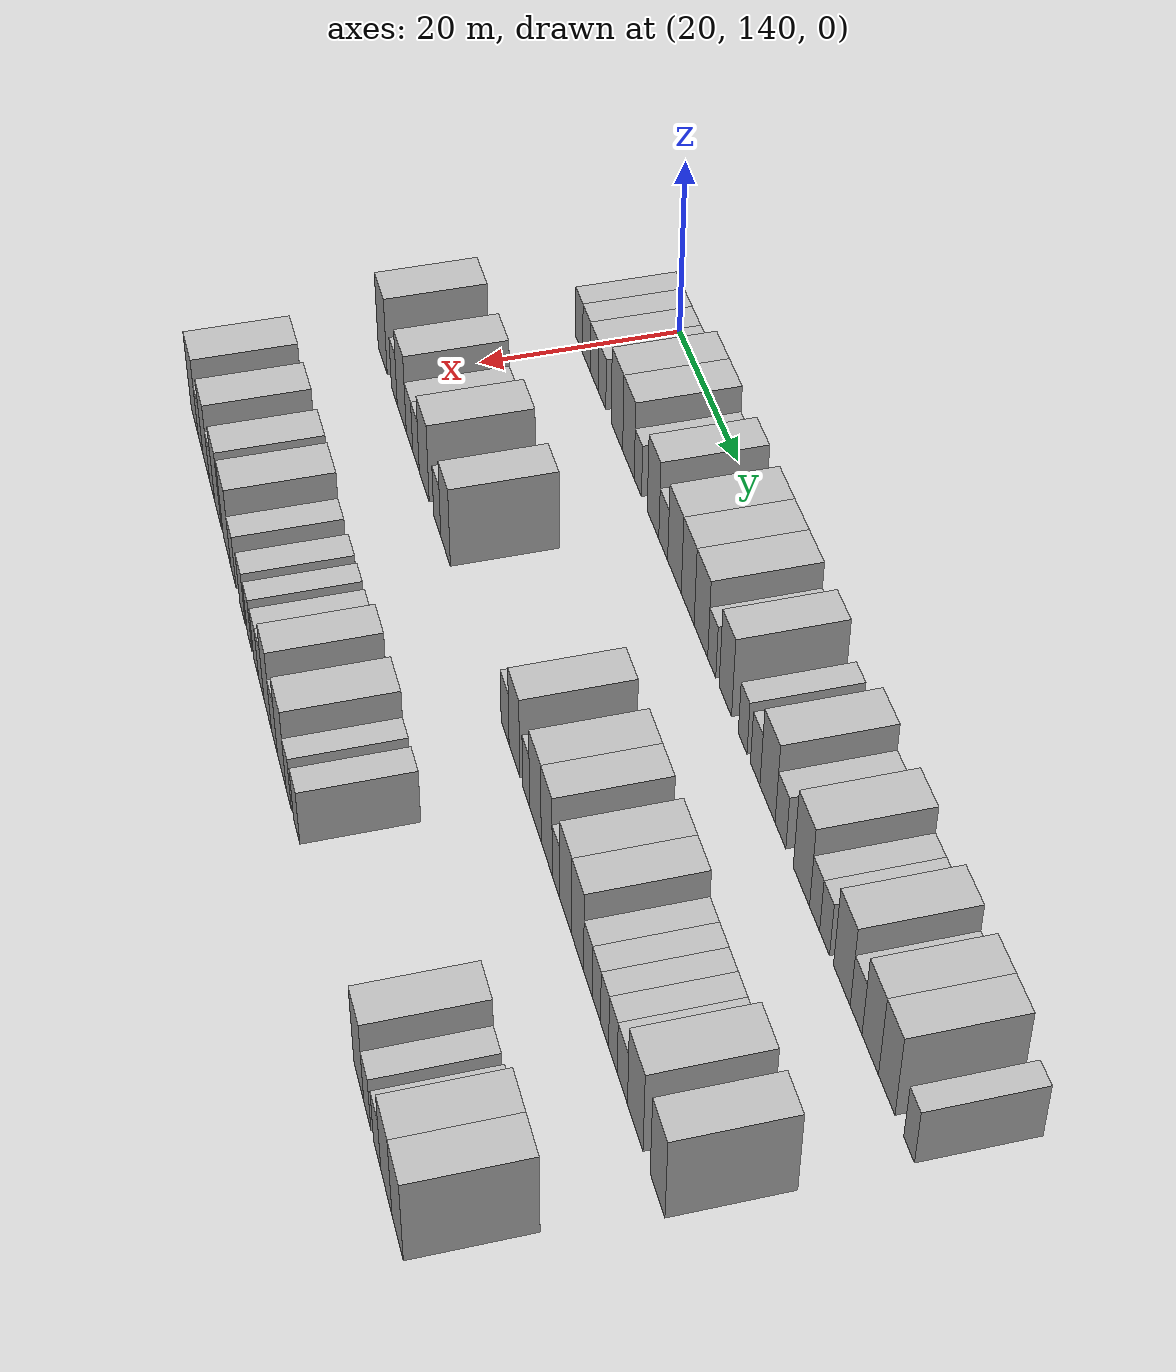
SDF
<sdf version="1.6">
 <world name="default">
  <model name="building_102">
   <static>1</static>
   <pose>25.0000 139.5707 0 0.000000 0.000000 0.000000</pose>
   <link name="link">
    <pose>0 0 3.00 0 0 0</pose>
    <collision name="collision"><geometry><box><size>10.0000 2.7591 6.0000</size></box></geometry></collision>
    <visual name="visual">
     <cast_shadows>0</cast_shadows>
     <geometry><box><size>10.0000 2.7591 6.0000</size></box></geometry>
     <material>
      <script>
       <uri>model://HANNAS_wall/materials/scripts</uri>
       <uri>model://HANNAS_wall/materials/textures</uri>
       <name>vrc/HANNAS_wall</name>
      </script>
     </material>
    </visual>
   </link>
  </model>
  <model name="building_103">
   <static>1</static>
   <pose>25.0000 142.3990 0 0.000000 0.000000 0.000000</pose>
   <link name="link">
    <pose>0 0 3.00 0 0 0</pose>
    <collision name="collision"><geometry><box><size>10.0000 2.8974 6.0000</size></box></geometry></collision>
    <visual name="visual">
     <cast_shadows>0</cast_shadows>
     <geometry><box><size>10.0000 2.8974 6.0000</size></box></geometry>
     <material>
      <script>
       <uri>model://HANNAS_wall/materials/scripts</uri>
       <uri>model://HANNAS_wall/materials/textures</uri>
       <name>vrc/HANNAS_wall</name>
      </script>
     </material>
    </visual>
   </link>
  </model>
  <model name="building_104">
   <static>1</static>
   <pose>25.0000 145.3443 0 0.000000 0.000000 0.000000</pose>
   <link name="link">
    <pose>0 0 3.00 0 0 0</pose>
    <collision name="collision"><geometry><box><size>10.0000 2.9933 6.0000</size></box></geometry></collision>
    <visual name="visual">
     <cast_shadows>0</cast_shadows>
     <geometry><box><size>10.0000 2.9933 6.0000</size></box></geometry>
     <material>
      <script>
       <uri>model://HANNAS_wall/materials/scripts</uri>
       <uri>model://HANNAS_wall/materials/textures</uri>
       <name>vrc/HANNAS_wall</name>
      </script>
     </material>
    </visual>
   </link>
  </model>
  <model name="building_105">
   <static>1</static>
   <pose>25.0000 148.2970 0 0.000000 0.000000 0.000000</pose>
   <link name="link">
    <pose>0 0 3.00 0 0 0</pose>
    <collision name="collision"><geometry><box><size>10.0000 2.9121 6.0000</size></box></geometry></collision>
    <visual name="visual">
     <cast_shadows>0</cast_shadows>
     <geometry><box><size>10.0000 2.9121 6.0000</size></box></geometry>
     <material>
      <script>
       <uri>model://HANNAS_wall/materials/scripts</uri>
       <uri>model://HANNAS_wall/materials/textures</uri>
       <name>vrc/HANNAS_wall</name>
      </script>
     </material>
    </visual>
   </link>
  </model>
  <model name="building_106">
   <static>1</static>
   <pose>25.0000 153.8613 0 0.000000 0.000000 0.000000</pose>
   <link name="link">
    <pose>0 0 4.50 0 0 0</pose>
    <collision name="collision"><geometry><box><size>10.0000 4.2165 9.0000</size></box></geometry></collision>
    <visual name="visual">
     <cast_shadows>0</cast_shadows>
     <geometry><box><size>10.0000 4.2165 9.0000</size></box></geometry>
     <material>
      <script>
       <uri>model://HANNAS_wall/materials/scripts</uri>
       <uri>model://HANNAS_wall/materials/textures</uri>
       <name>vrc/HANNAS_wall</name>
      </script>
     </material>
    </visual>
   </link>
  </model>
  <model name="building_107">
   <static>1</static>
   <pose>25.0000 158.0346 0 0.000000 0.000000 0.000000</pose>
   <link name="link">
    <pose>0 0 4.50 0 0 0</pose>
    <collision name="collision"><geometry><box><size>10.0000 4.1300 9.0000</size></box></geometry></collision>
    <visual name="visual">
     <cast_shadows>0</cast_shadows>
     <geometry><box><size>10.0000 4.1300 9.0000</size></box></geometry>
     <material>
      <script>
       <uri>model://HANNAS_wall/materials/scripts</uri>
       <uri>model://HANNAS_wall/materials/textures</uri>
       <name>vrc/HANNAS_wall</name>
      </script>
     </material>
    </visual>
   </link>
  </model>
  <model name="building_108">
   <static>1</static>
   <pose>25.0000 161.3804 0 0.000000 0.000000 0.000000</pose>
   <link name="link">
    <pose>0 0 3.00 0 0 0</pose>
    <collision name="collision"><geometry><box><size>10.0000 2.5616 6.0000</size></box></geometry></collision>
    <visual name="visual">
     <cast_shadows>0</cast_shadows>
     <geometry><box><size>10.0000 2.5616 6.0000</size></box></geometry>
     <material>
      <script>
       <uri>model://HANNAS_wall/materials/scripts</uri>
       <uri>model://HANNAS_wall/materials/textures</uri>
       <name>vrc/HANNAS_wall</name>
      </script>
     </material>
    </visual>
   </link>
  </model>
  <model name="building_109">
   <static>1</static>
   <pose>25.0000 166.6417 0 0.000000 0.000000 0.000000</pose>
   <link name="link">
    <pose>0 0 4.50 0 0 0</pose>
    <collision name="collision"><geometry><box><size>10.0000 3.9611 9.0000</size></box></geometry></collision>
    <visual name="visual">
     <cast_shadows>0</cast_shadows>
     <geometry><box><size>10.0000 3.9611 9.0000</size></box></geometry>
     <material>
      <script>
       <uri>model://HANNAS_wall/materials/scripts</uri>
       <uri>model://HANNAS_wall/materials/textures</uri>
       <name>vrc/HANNAS_wall</name>
      </script>
     </material>
    </visual>
   </link>
  </model>
  <model name="building_110">
   <static>1</static>
   <pose>25.0000 170.1145 0 0.000000 0.000000 0.000000</pose>
   <link name="link">
    <pose>0 0 3.00 0 0 0</pose>
    <collision name="collision"><geometry><box><size>10.0000 2.9844 6.0000</size></box></geometry></collision>
    <visual name="visual">
     <cast_shadows>0</cast_shadows>
     <geometry><box><size>10.0000 2.9844 6.0000</size></box></geometry>
     <material>
      <script>
       <uri>model://HANNAS_wall/materials/scripts</uri>
       <uri>model://HANNAS_wall/materials/textures</uri>
       <name>vrc/HANNAS_wall</name>
      </script>
     </material>
    </visual>
   </link>
  </model>
  <model name="building_111">
   <static>1</static>
   <pose>25.0000 173.8417 0 0.000000 0.000000 0.000000</pose>
   <link name="link">
    <pose>0 0 4.50 0 0 0</pose>
    <collision name="collision"><geometry><box><size>10.0000 4.4700 9.0000</size></box></geometry></collision>
    <visual name="visual">
     <cast_shadows>0</cast_shadows>
     <geometry><box><size>10.0000 4.4700 9.0000</size></box></geometry>
     <material>
      <script>
       <uri>model://HANNAS_wall/materials/scripts</uri>
       <uri>model://HANNAS_wall/materials/textures</uri>
       <name>vrc/HANNAS_wall</name>
      </script>
     </material>
    </visual>
   </link>
  </model>
  <model name="building_112">
   <static>1</static>
   <pose>25.0000 178.1558 0 0.000000 0.000000 0.000000</pose>
   <link name="link">
    <pose>0 0 4.50 0 0 0</pose>
    <collision name="collision"><geometry><box><size>10.0000 4.1581 9.0000</size></box></geometry></collision>
    <visual name="visual">
     <cast_shadows>0</cast_shadows>
     <geometry><box><size>10.0000 4.1581 9.0000</size></box></geometry>
     <material>
      <script>
       <uri>model://HANNAS_wall/materials/scripts</uri>
       <uri>model://HANNAS_wall/materials/textures</uri>
       <name>vrc/HANNAS_wall</name>
      </script>
     </material>
    </visual>
   </link>
  </model>
  <model name="building_113">
   <static>1</static>
   <pose>25.0000 182.3740 0 0.000000 0.000000 0.000000</pose>
   <link name="link">
    <pose>0 0 4.50 0 0 0</pose>
    <collision name="collision"><geometry><box><size>10.0000 4.2785 9.0000</size></box></geometry></collision>
    <visual name="visual">
     <cast_shadows>0</cast_shadows>
     <geometry><box><size>10.0000 4.2785 9.0000</size></box></geometry>
     <material>
      <script>
       <uri>model://HANNAS_wall/materials/scripts</uri>
       <uri>model://HANNAS_wall/materials/textures</uri>
       <name>vrc/HANNAS_wall</name>
      </script>
     </material>
    </visual>
   </link>
  </model>
  <model name="building_114">
   <static>1</static>
   <pose>25.0000 185.7671 0 0.000000 0.000000 0.000000</pose>
   <link name="link">
    <pose>0 0 3.00 0 0 0</pose>
    <collision name="collision"><geometry><box><size>10.0000 2.5076 6.0000</size></box></geometry></collision>
    <visual name="visual">
     <cast_shadows>0</cast_shadows>
     <geometry><box><size>10.0000 2.5076 6.0000</size></box></geometry>
     <material>
      <script>
       <uri>model://HANNAS_wall/materials/scripts</uri>
       <uri>model://HANNAS_wall/materials/textures</uri>
       <name>vrc/HANNAS_wall</name>
      </script>
     </material>
    </visual>
   </link>
  </model>
  <model name="building_115">
   <static>1</static>
   <pose>25.0000 189.9140 0 0.000000 0.000000 0.000000</pose>
   <link name="link">
    <pose>0 0 4.50 0 0 0</pose>
    <collision name="collision"><geometry><box><size>10.0000 3.7862 9.0000</size></box></geometry></collision>
    <visual name="visual">
     <cast_shadows>0</cast_shadows>
     <geometry><box><size>10.0000 3.7862 9.0000</size></box></geometry>
     <material>
      <script>
       <uri>model://HANNAS_wall/materials/scripts</uri>
       <uri>model://HANNAS_wall/materials/textures</uri>
       <name>vrc/HANNAS_wall</name>
      </script>
     </material>
    </visual>
   </link>
  </model>
  <model name="building_116">
   <static>1</static>
   <pose>25.0000 195.0749 0 0.000000 0.000000 0.000000</pose>
   <link name="link">
    <pose>0 0 3.00 0 0 0</pose>
    <collision name="collision"><geometry><box><size>10.0000 2.5357 6.0000</size></box></geometry></collision>
    <visual name="visual">
     <cast_shadows>0</cast_shadows>
     <geometry><box><size>10.0000 2.5357 6.0000</size></box></geometry>
     <material>
      <script>
       <uri>model://HANNAS_wall/materials/scripts</uri>
       <uri>model://HANNAS_wall/materials/textures</uri>
       <name>vrc/HANNAS_wall</name>
      </script>
     </material>
    </visual>
   </link>
  </model>
  <model name="building_117">
   <static>1</static>
   <pose>25.0000 198.7033 0 0.000000 0.000000 0.000000</pose>
   <link name="link">
    <pose>0 0 3.00 0 0 0</pose>
    <collision name="collision"><geometry><box><size>10.0000 2.7210 6.0000</size></box></geometry></collision>
    <visual name="visual">
     <cast_shadows>0</cast_shadows>
     <geometry><box><size>10.0000 2.7210 6.0000</size></box></geometry>
     <material>
      <script>
       <uri>model://HANNAS_wall/materials/scripts</uri>
       <uri>model://HANNAS_wall/materials/textures</uri>
       <name>vrc/HANNAS_wall</name>
      </script>
     </material>
    </visual>
   </link>
  </model>
  <model name="building_118">
   <static>1</static>
   <pose>25.0000 202.2008 0 0.000000 0.000000 0.000000</pose>
   <link name="link">
    <pose>0 0 4.50 0 0 0</pose>
    <collision name="collision"><geometry><box><size>10.0000 4.2741 9.0000</size></box></geometry></collision>
    <visual name="visual">
     <cast_shadows>0</cast_shadows>
     <geometry><box><size>10.0000 4.2741 9.0000</size></box></geometry>
     <material>
      <script>
       <uri>model://HANNAS_wall/materials/scripts</uri>
       <uri>model://HANNAS_wall/materials/textures</uri>
       <name>vrc/HANNAS_wall</name>
      </script>
     </material>
    </visual>
   </link>
  </model>
  <model name="building_119">
   <static>1</static>
   <pose>25.0000 205.8192 0 0.000000 0.000000 0.000000</pose>
   <link name="link">
    <pose>0 0 3.00 0 0 0</pose>
    <collision name="collision"><geometry><box><size>10.0000 2.9627 6.0000</size></box></geometry></collision>
    <visual name="visual">
     <cast_shadows>0</cast_shadows>
     <geometry><box><size>10.0000 2.9627 6.0000</size></box></geometry>
     <material>
      <script>
       <uri>model://HANNAS_wall/materials/scripts</uri>
       <uri>model://HANNAS_wall/materials/textures</uri>
       <name>vrc/HANNAS_wall</name>
      </script>
     </material>
    </visual>
   </link>
  </model>
  <model name="building_120">
   <static>1</static>
   <pose>25.0000 211.4628 0 0.000000 0.000000 0.000000</pose>
   <link name="link">
    <pose>0 0 4.50 0 0 0</pose>
    <collision name="collision"><geometry><box><size>10.0000 4.3244 9.0000</size></box></geometry></collision>
    <visual name="visual">
     <cast_shadows>0</cast_shadows>
     <geometry><box><size>10.0000 4.3244 9.0000</size></box></geometry>
     <material>
      <script>
       <uri>model://HANNAS_wall/materials/scripts</uri>
       <uri>model://HANNAS_wall/materials/textures</uri>
       <name>vrc/HANNAS_wall</name>
      </script>
     </material>
    </visual>
   </link>
  </model>
  <model name="building_121">
   <static>1</static>
   <pose>25.0000 214.9407 0 0.000000 0.000000 0.000000</pose>
   <link name="link">
    <pose>0 0 3.00 0 0 0</pose>
    <collision name="collision"><geometry><box><size>10.0000 2.6315 6.0000</size></box></geometry></collision>
    <visual name="visual">
     <cast_shadows>0</cast_shadows>
     <geometry><box><size>10.0000 2.6315 6.0000</size></box></geometry>
     <material>
      <script>
       <uri>model://HANNAS_wall/materials/scripts</uri>
       <uri>model://HANNAS_wall/materials/textures</uri>
       <name>vrc/HANNAS_wall</name>
      </script>
     </material>
    </visual>
   </link>
  </model>
  <model name="building_122">
   <static>1</static>
   <pose>25.0000 217.5340 0 0.000000 0.000000 0.000000</pose>
   <link name="link">
    <pose>0 0 3.00 0 0 0</pose>
    <collision name="collision"><geometry><box><size>10.0000 2.5551 6.0000</size></box></geometry></collision>
    <visual name="visual">
     <cast_shadows>0</cast_shadows>
     <geometry><box><size>10.0000 2.5551 6.0000</size></box></geometry>
     <material>
      <script>
       <uri>model://HANNAS_wall/materials/scripts</uri>
       <uri>model://HANNAS_wall/materials/textures</uri>
       <name>vrc/HANNAS_wall</name>
      </script>
     </material>
    </visual>
   </link>
  </model>
  <model name="building_123">
   <static>1</static>
   <pose>25.0000 221.8980 0 0.000000 0.000000 0.000000</pose>
   <link name="link">
    <pose>0 0 4.50 0 0 0</pose>
    <collision name="collision"><geometry><box><size>10.0000 4.1728 9.0000</size></box></geometry></collision>
    <visual name="visual">
     <cast_shadows>0</cast_shadows>
     <geometry><box><size>10.0000 4.1728 9.0000</size></box></geometry>
     <material>
      <script>
       <uri>model://HANNAS_wall/materials/scripts</uri>
       <uri>model://HANNAS_wall/materials/textures</uri>
       <name>vrc/HANNAS_wall</name>
      </script>
     </material>
    </visual>
   </link>
  </model>
  <model name="building_124">
   <static>1</static>
   <pose>25.0000 225.4275 0 0.000000 0.000000 0.000000</pose>
   <link name="link">
    <pose>0 0 3.00 0 0 0</pose>
    <collision name="collision"><geometry><box><size>10.0000 2.8861 6.0000</size></box></geometry></collision>
    <visual name="visual">
     <cast_shadows>0</cast_shadows>
     <geometry><box><size>10.0000 2.8861 6.0000</size></box></geometry>
     <material>
      <script>
       <uri>model://HANNAS_wall/materials/scripts</uri>
       <uri>model://HANNAS_wall/materials/textures</uri>
       <name>vrc/HANNAS_wall</name>
      </script>
     </material>
    </visual>
   </link>
  </model>
  <model name="building_125">
   <static>1</static>
   <pose>25.0000 228.8357 0 0.000000 0.000000 0.000000</pose>
   <link name="link">
    <pose>0 0 4.50 0 0 0</pose>
    <collision name="collision"><geometry><box><size>10.0000 3.9302 9.0000</size></box></geometry></collision>
    <visual name="visual">
     <cast_shadows>0</cast_shadows>
     <geometry><box><size>10.0000 3.9302 9.0000</size></box></geometry>
     <material>
      <script>
       <uri>model://HANNAS_wall/materials/scripts</uri>
       <uri>model://HANNAS_wall/materials/textures</uri>
       <name>vrc/HANNAS_wall</name>
      </script>
     </material>
    </visual>
   </link>
  </model>
  <model name="building_126">
   <static>1</static>
   <pose>25.0000 232.7285 0 0.000000 0.000000 0.000000</pose>
   <link name="link">
    <pose>0 0 4.50 0 0 0</pose>
    <collision name="collision"><geometry><box><size>10.0000 3.8555 9.0000</size></box></geometry></collision>
    <visual name="visual">
     <cast_shadows>0</cast_shadows>
     <geometry><box><size>10.0000 3.8555 9.0000</size></box></geometry>
     <material>
      <script>
       <uri>model://HANNAS_wall/materials/scripts</uri>
       <uri>model://HANNAS_wall/materials/textures</uri>
       <name>vrc/HANNAS_wall</name>
      </script>
     </material>
    </visual>
   </link>
  </model>
  <model name="building_127">
   <static>1</static>
   <pose>25.0000 237.8708 0 0.000000 0.000000 0.000000</pose>
   <link name="link">
    <pose>0 0 3.00 0 0 0</pose>
    <collision name="collision"><geometry><box><size>10.0000 2.4291 6.0000</size></box></geometry></collision>
    <visual name="visual">
     <cast_shadows>0</cast_shadows>
     <geometry><box><size>10.0000 2.4291 6.0000</size></box></geometry>
     <material>
      <script>
       <uri>model://HANNAS_wall/materials/scripts</uri>
       <uri>model://HANNAS_wall/materials/textures</uri>
       <name>vrc/HANNAS_wall</name>
      </script>
     </material>
    </visual>
   </link>
  </model>
  <model name="building_218">
   <static>1</static>
   <pose>44.0000 137.3763 0 0.000000 0.000000 0.000000</pose>
   <link name="link">
    <pose>0 0 4.50 0 0 0</pose>
    <collision name="collision"><geometry><box><size>10.0000 4.3172 9.0000</size></box></geometry></collision>
    <visual name="visual">
     <cast_shadows>0</cast_shadows>
     <geometry><box><size>10.0000 4.3172 9.0000</size></box></geometry>
     <material>
      <script>
       <uri>model://HANNAS_wall/materials/scripts</uri>
       <uri>model://HANNAS_wall/materials/textures</uri>
       <name>vrc/HANNAS_wall</name>
      </script>
     </material>
    </visual>
   </link>
  </model>
  <model name="building_219">
   <static>1</static>
   <pose>44.0000 142.9023 0 0.000000 0.000000 0.000000</pose>
   <link name="link">
    <pose>0 0 3.00 0 0 0</pose>
    <collision name="collision"><geometry><box><size>10.0000 2.7348 6.0000</size></box></geometry></collision>
    <visual name="visual">
     <cast_shadows>0</cast_shadows>
     <geometry><box><size>10.0000 2.7348 6.0000</size></box></geometry>
     <material>
      <script>
       <uri>model://HANNAS_wall/materials/scripts</uri>
       <uri>model://HANNAS_wall/materials/textures</uri>
       <name>vrc/HANNAS_wall</name>
      </script>
     </material>
    </visual>
   </link>
  </model>
  <model name="building_220">
   <static>1</static>
   <pose>44.0000 146.3601 0 0.000000 0.000000 0.000000</pose>
   <link name="link">
    <pose>0 0 4.50 0 0 0</pose>
    <collision name="collision"><geometry><box><size>10.0000 4.1807 9.0000</size></box></geometry></collision>
    <visual name="visual">
     <cast_shadows>0</cast_shadows>
     <geometry><box><size>10.0000 4.1807 9.0000</size></box></geometry>
     <material>
      <script>
       <uri>model://HANNAS_wall/materials/scripts</uri>
       <uri>model://HANNAS_wall/materials/textures</uri>
       <name>vrc/HANNAS_wall</name>
      </script>
     </material>
    </visual>
   </link>
  </model>
  <model name="building_221">
   <static>1</static>
   <pose>44.0000 149.9331 0 0.000000 0.000000 0.000000</pose>
   <link name="link">
    <pose>0 0 3.00 0 0 0</pose>
    <collision name="collision"><geometry><box><size>10.0000 2.9654 6.0000</size></box></geometry></collision>
    <visual name="visual">
     <cast_shadows>0</cast_shadows>
     <geometry><box><size>10.0000 2.9654 6.0000</size></box></geometry>
     <material>
      <script>
       <uri>model://HANNAS_wall/materials/scripts</uri>
       <uri>model://HANNAS_wall/materials/textures</uri>
       <name>vrc/HANNAS_wall</name>
      </script>
     </material>
    </visual>
   </link>
  </model>
  <model name="building_222">
   <static>1</static>
   <pose>44.0000 152.8677 0 0.000000 0.000000 0.000000</pose>
   <link name="link">
    <pose>0 0 3.00 0 0 0</pose>
    <collision name="collision"><geometry><box><size>10.0000 2.9036 6.0000</size></box></geometry></collision>
    <visual name="visual">
     <cast_shadows>0</cast_shadows>
     <geometry><box><size>10.0000 2.9036 6.0000</size></box></geometry>
     <material>
      <script>
       <uri>model://HANNAS_wall/materials/scripts</uri>
       <uri>model://HANNAS_wall/materials/textures</uri>
       <name>vrc/HANNAS_wall</name>
      </script>
     </material>
    </visual>
   </link>
  </model>
  <model name="building_223">
   <static>1</static>
   <pose>44.0000 156.4922 0 0.000000 0.000000 0.000000</pose>
   <link name="link">
    <pose>0 0 4.50 0 0 0</pose>
    <collision name="collision"><geometry><box><size>10.0000 4.3455 9.0000</size></box></geometry></collision>
    <visual name="visual">
     <cast_shadows>0</cast_shadows>
     <geometry><box><size>10.0000 4.3455 9.0000</size></box></geometry>
     <material>
      <script>
       <uri>model://HANNAS_wall/materials/scripts</uri>
       <uri>model://HANNAS_wall/materials/textures</uri>
       <name>vrc/HANNAS_wall</name>
      </script>
     </material>
    </visual>
   </link>
  </model>
  <model name="building_224">
   <static>1</static>
   <pose>44.0000 162.1565 0 0.000000 0.000000 0.000000</pose>
   <link name="link">
    <pose>0 0 3.00 0 0 0</pose>
    <collision name="collision"><geometry><box><size>10.0000 2.9832 6.0000</size></box></geometry></collision>
    <visual name="visual">
     <cast_shadows>0</cast_shadows>
     <geometry><box><size>10.0000 2.9832 6.0000</size></box></geometry>
     <material>
      <script>
       <uri>model://HANNAS_wall/materials/scripts</uri>
       <uri>model://HANNAS_wall/materials/textures</uri>
       <name>vrc/HANNAS_wall</name>
      </script>
     </material>
    </visual>
   </link>
  </model>
  <model name="building_225">
   <static>1</static>
   <pose>44.0000 165.6460 0 0.000000 0.000000 0.000000</pose>
   <link name="link">
    <pose>0 0 4.50 0 0 0</pose>
    <collision name="collision"><geometry><box><size>10.0000 3.9958 9.0000</size></box></geometry></collision>
    <visual name="visual">
     <cast_shadows>0</cast_shadows>
     <geometry><box><size>10.0000 3.9958 9.0000</size></box></geometry>
     <material>
      <script>
       <uri>model://HANNAS_wall/materials/scripts</uri>
       <uri>model://HANNAS_wall/materials/textures</uri>
       <name>vrc/HANNAS_wall</name>
      </script>
     </material>
    </visual>
   </link>
  </model>
  <model name="building_226">
   <static>1</static>
   <pose>44.0000 189.0030 0 0.000000 0.000000 0.000000</pose>
   <link name="link">
    <pose>0 0 3.00 0 0 0</pose>
    <collision name="collision"><geometry><box><size>10.0000 2.9060 6.0000</size></box></geometry></collision>
    <visual name="visual">
     <cast_shadows>0</cast_shadows>
     <geometry><box><size>10.0000 2.9060 6.0000</size></box></geometry>
     <material>
      <script>
       <uri>model://HANNAS_wall/materials/scripts</uri>
       <uri>model://HANNAS_wall/materials/textures</uri>
       <name>vrc/HANNAS_wall</name>
      </script>
     </material>
    </visual>
   </link>
  </model>
  <model name="building_227">
   <static>1</static>
   <pose>44.0000 192.3925 0 0.000000 0.000000 0.000000</pose>
   <link name="link">
    <pose>0 0 4.50 0 0 0</pose>
    <collision name="collision"><geometry><box><size>10.0000 3.8730 9.0000</size></box></geometry></collision>
    <visual name="visual">
     <cast_shadows>0</cast_shadows>
     <geometry><box><size>10.0000 3.8730 9.0000</size></box></geometry>
     <material>
      <script>
       <uri>model://HANNAS_wall/materials/scripts</uri>
       <uri>model://HANNAS_wall/materials/textures</uri>
       <name>vrc/HANNAS_wall</name>
      </script>
     </material>
    </visual>
   </link>
  </model>
  <model name="building_228">
   <static>1</static>
   <pose>44.0000 196.5464 0 0.000000 0.000000 0.000000</pose>
   <link name="link">
    <pose>0 0 3.00 0 0 0</pose>
    <collision name="collision"><geometry><box><size>10.0000 2.4349 6.0000</size></box></geometry></collision>
    <visual name="visual">
     <cast_shadows>0</cast_shadows>
     <geometry><box><size>10.0000 2.4349 6.0000</size></box></geometry>
     <material>
      <script>
       <uri>model://HANNAS_wall/materials/scripts</uri>
       <uri>model://HANNAS_wall/materials/textures</uri>
       <name>vrc/HANNAS_wall</name>
      </script>
     </material>
    </visual>
   </link>
  </model>
  <model name="building_229">
   <static>1</static>
   <pose>44.0000 199.7722 0 0.000000 0.000000 0.000000</pose>
   <link name="link">
    <pose>0 0 4.50 0 0 0</pose>
    <collision name="collision"><geometry><box><size>10.0000 4.0166 9.0000</size></box></geometry></collision>
    <visual name="visual">
     <cast_shadows>0</cast_shadows>
     <geometry><box><size>10.0000 4.0166 9.0000</size></box></geometry>
     <material>
      <script>
       <uri>model://HANNAS_wall/materials/scripts</uri>
       <uri>model://HANNAS_wall/materials/textures</uri>
       <name>vrc/HANNAS_wall</name>
      </script>
     </material>
    </visual>
   </link>
  </model>
  <model name="building_230">
   <static>1</static>
   <pose>44.0000 203.6360 0 0.000000 0.000000 0.000000</pose>
   <link name="link">
    <pose>0 0 4.50 0 0 0</pose>
    <collision name="collision"><geometry><box><size>10.0000 3.7110 9.0000</size></box></geometry></collision>
    <visual name="visual">
     <cast_shadows>0</cast_shadows>
     <geometry><box><size>10.0000 3.7110 9.0000</size></box></geometry>
     <material>
      <script>
       <uri>model://HANNAS_wall/materials/scripts</uri>
       <uri>model://HANNAS_wall/materials/textures</uri>
       <name>vrc/HANNAS_wall</name>
      </script>
     </material>
    </visual>
   </link>
  </model>
  <model name="building_231">
   <static>1</static>
   <pose>44.0000 206.7083 0 0.000000 0.000000 0.000000</pose>
   <link name="link">
    <pose>0 0 3.00 0 0 0</pose>
    <collision name="collision"><geometry><box><size>10.0000 2.4336 6.0000</size></box></geometry></collision>
    <visual name="visual">
     <cast_shadows>0</cast_shadows>
     <geometry><box><size>10.0000 2.4336 6.0000</size></box></geometry>
     <material>
      <script>
       <uri>model://HANNAS_wall/materials/scripts</uri>
       <uri>model://HANNAS_wall/materials/textures</uri>
       <name>vrc/HANNAS_wall</name>
      </script>
     </material>
    </visual>
   </link>
  </model>
  <model name="building_232">
   <static>1</static>
   <pose>44.0000 209.9108 0 0.000000 0.000000 0.000000</pose>
   <link name="link">
    <pose>0 0 4.50 0 0 0</pose>
    <collision name="collision"><geometry><box><size>10.0000 3.9716 9.0000</size></box></geometry></collision>
    <visual name="visual">
     <cast_shadows>0</cast_shadows>
     <geometry><box><size>10.0000 3.9716 9.0000</size></box></geometry>
     <material>
      <script>
       <uri>model://HANNAS_wall/materials/scripts</uri>
       <uri>model://HANNAS_wall/materials/textures</uri>
       <name>vrc/HANNAS_wall</name>
      </script>
     </material>
    </visual>
   </link>
  </model>
  <model name="building_233">
   <static>1</static>
   <pose>44.0000 213.7911 0 0.000000 0.000000 0.000000</pose>
   <link name="link">
    <pose>0 0 4.50 0 0 0</pose>
    <collision name="collision"><geometry><box><size>10.0000 3.7889 9.0000</size></box></geometry></collision>
    <visual name="visual">
     <cast_shadows>0</cast_shadows>
     <geometry><box><size>10.0000 3.7889 9.0000</size></box></geometry>
     <material>
      <script>
       <uri>model://HANNAS_wall/materials/scripts</uri>
       <uri>model://HANNAS_wall/materials/textures</uri>
       <name>vrc/HANNAS_wall</name>
      </script>
     </material>
    </visual>
   </link>
  </model>
  <model name="building_234">
   <static>1</static>
   <pose>44.0000 217.0022 0 0.000000 0.000000 0.000000</pose>
   <link name="link">
    <pose>0 0 3.00 0 0 0</pose>
    <collision name="collision"><geometry><box><size>10.0000 2.6334 6.0000</size></box></geometry></collision>
    <visual name="visual">
     <cast_shadows>0</cast_shadows>
     <geometry><box><size>10.0000 2.6334 6.0000</size></box></geometry>
     <material>
      <script>
       <uri>model://HANNAS_wall/materials/scripts</uri>
       <uri>model://HANNAS_wall/materials/textures</uri>
       <name>vrc/HANNAS_wall</name>
      </script>
     </material>
    </visual>
   </link>
  </model>
  <model name="building_235">
   <static>1</static>
   <pose>44.0000 219.6020 0 0.000000 0.000000 0.000000</pose>
   <link name="link">
    <pose>0 0 3.00 0 0 0</pose>
    <collision name="collision"><geometry><box><size>10.0000 2.5663 6.0000</size></box></geometry></collision>
    <visual name="visual">
     <cast_shadows>0</cast_shadows>
     <geometry><box><size>10.0000 2.5663 6.0000</size></box></geometry>
     <material>
      <script>
       <uri>model://HANNAS_wall/materials/scripts</uri>
       <uri>model://HANNAS_wall/materials/textures</uri>
       <name>vrc/HANNAS_wall</name>
      </script>
     </material>
    </visual>
   </link>
  </model>
  <model name="building_236">
   <static>1</static>
   <pose>44.0000 222.1033 0 0.000000 0.000000 0.000000</pose>
   <link name="link">
    <pose>0 0 3.00 0 0 0</pose>
    <collision name="collision"><geometry><box><size>10.0000 2.4362 6.0000</size></box></geometry></collision>
    <visual name="visual">
     <cast_shadows>0</cast_shadows>
     <geometry><box><size>10.0000 2.4362 6.0000</size></box></geometry>
     <material>
      <script>
       <uri>model://HANNAS_wall/materials/scripts</uri>
       <uri>model://HANNAS_wall/materials/textures</uri>
       <name>vrc/HANNAS_wall</name>
      </script>
     </material>
    </visual>
   </link>
  </model>
  <model name="building_237">
   <static>1</static>
   <pose>44.0000 224.5916 0 0.000000 0.000000 0.000000</pose>
   <link name="link">
    <pose>0 0 3.00 0 0 0</pose>
    <collision name="collision"><geometry><box><size>10.0000 2.5404 6.0000</size></box></geometry></collision>
    <visual name="visual">
     <cast_shadows>0</cast_shadows>
     <geometry><box><size>10.0000 2.5404 6.0000</size></box></geometry>
     <material>
      <script>
       <uri>model://HANNAS_wall/materials/scripts</uri>
       <uri>model://HANNAS_wall/materials/textures</uri>
       <name>vrc/HANNAS_wall</name>
      </script>
     </material>
    </visual>
   </link>
  </model>
  <model name="building_238">
   <static>1</static>
   <pose>44.0000 227.3590 0 0.000000 0.000000 0.000000</pose>
   <link name="link">
    <pose>0 0 3.00 0 0 0</pose>
    <collision name="collision"><geometry><box><size>10.0000 2.9945 6.0000</size></box></geometry></collision>
    <visual name="visual">
     <cast_shadows>0</cast_shadows>
     <geometry><box><size>10.0000 2.9945 6.0000</size></box></geometry>
     <material>
      <script>
       <uri>model://HANNAS_wall/materials/scripts</uri>
       <uri>model://HANNAS_wall/materials/textures</uri>
       <name>vrc/HANNAS_wall</name>
      </script>
     </material>
    </visual>
   </link>
  </model>
  <model name="building_239">
   <static>1</static>
   <pose>44.0000 231.0631 0 0.000000 0.000000 0.000000</pose>
   <link name="link">
    <pose>0 0 4.50 0 0 0</pose>
    <collision name="collision"><geometry><box><size>10.0000 4.4137 9.0000</size></box></geometry></collision>
    <visual name="visual">
     <cast_shadows>0</cast_shadows>
     <geometry><box><size>10.0000 4.4137 9.0000</size></box></geometry>
     <material>
      <script>
       <uri>model://HANNAS_wall/materials/scripts</uri>
       <uri>model://HANNAS_wall/materials/textures</uri>
       <name>vrc/HANNAS_wall</name>
      </script>
     </material>
    </visual>
   </link>
  </model>
  <model name="building_240">
   <static>1</static>
   <pose>44.0000 237.2846 0 0.000000 0.000000 0.000000</pose>
   <link name="link">
    <pose>0 0 4.50 0 0 0</pose>
    <collision name="collision"><geometry><box><size>10.0000 4.0293 9.0000</size></box></geometry></collision>
    <visual name="visual">
     <cast_shadows>0</cast_shadows>
     <geometry><box><size>10.0000 4.0293 9.0000</size></box></geometry>
     <material>
      <script>
       <uri>model://HANNAS_wall/materials/scripts</uri>
       <uri>model://HANNAS_wall/materials/textures</uri>
       <name>vrc/HANNAS_wall</name>
      </script>
     </material>
    </visual>
   </link>
  </model>
  <model name="building_330">
   <static>1</static>
   <pose>63.0000 142.0406 0 0.000000 0.000000 0.000000</pose>
   <link name="link">
    <pose>0 0 4.50 0 0 0</pose>
    <collision name="collision"><geometry><box><size>10.0000 4.3673 9.0000</size></box></geometry></collision>
    <visual name="visual">
     <cast_shadows>0</cast_shadows>
     <geometry><box><size>10.0000 4.3673 9.0000</size></box></geometry>
     <material>
      <script>
       <uri>model://HANNAS_wall/materials/scripts</uri>
       <uri>model://HANNAS_wall/materials/textures</uri>
       <name>vrc/HANNAS_wall</name>
      </script>
     </material>
    </visual>
   </link>
  </model>
  <model name="building_331">
   <static>1</static>
   <pose>63.0000 145.6354 0 0.000000 0.000000 0.000000</pose>
   <link name="link">
    <pose>0 0 3.00 0 0 0</pose>
    <collision name="collision"><geometry><box><size>10.0000 2.8223 6.0000</size></box></geometry></collision>
    <visual name="visual">
     <cast_shadows>0</cast_shadows>
     <geometry><box><size>10.0000 2.8223 6.0000</size></box></geometry>
     <material>
      <script>
       <uri>model://HANNAS_wall/materials/scripts</uri>
       <uri>model://HANNAS_wall/materials/textures</uri>
       <name>vrc/HANNAS_wall</name>
      </script>
     </material>
    </visual>
   </link>
  </model>
  <model name="building_332">
   <static>1</static>
   <pose>63.0000 149.0404 0 0.000000 0.000000 0.000000</pose>
   <link name="link">
    <pose>0 0 4.50 0 0 0</pose>
    <collision name="collision"><geometry><box><size>10.0000 3.9877 9.0000</size></box></geometry></collision>
    <visual name="visual">
     <cast_shadows>0</cast_shadows>
     <geometry><box><size>10.0000 3.9877 9.0000</size></box></geometry>
     <material>
      <script>
       <uri>model://HANNAS_wall/materials/scripts</uri>
       <uri>model://HANNAS_wall/materials/textures</uri>
       <name>vrc/HANNAS_wall</name>
      </script>
     </material>
    </visual>
   </link>
  </model>
  <model name="building_333">
   <static>1</static>
   <pose>63.0000 152.5142 0 0.000000 0.000000 0.000000</pose>
   <link name="link">
    <pose>0 0 3.00 0 0 0</pose>
    <collision name="collision"><geometry><box><size>10.0000 2.9598 6.0000</size></box></geometry></collision>
    <visual name="visual">
     <cast_shadows>0</cast_shadows>
     <geometry><box><size>10.0000 2.9598 6.0000</size></box></geometry>
     <material>
      <script>
       <uri>model://HANNAS_wall/materials/scripts</uri>
       <uri>model://HANNAS_wall/materials/textures</uri>
       <name>vrc/HANNAS_wall</name>
      </script>
     </material>
    </visual>
   </link>
  </model>
  <model name="building_334">
   <static>1</static>
   <pose>63.0000 155.8908 0 0.000000 0.000000 0.000000</pose>
   <link name="link">
    <pose>0 0 4.50 0 0 0</pose>
    <collision name="collision"><geometry><box><size>10.0000 3.7934 9.0000</size></box></geometry></collision>
    <visual name="visual">
     <cast_shadows>0</cast_shadows>
     <geometry><box><size>10.0000 3.7934 9.0000</size></box></geometry>
     <material>
      <script>
       <uri>model://HANNAS_wall/materials/scripts</uri>
       <uri>model://HANNAS_wall/materials/textures</uri>
       <name>vrc/HANNAS_wall</name>
      </script>
     </material>
    </visual>
   </link>
  </model>
  <model name="building_335">
   <static>1</static>
   <pose>63.0000 160.8905 0 0.000000 0.000000 0.000000</pose>
   <link name="link">
    <pose>0 0 4.50 0 0 0</pose>
    <collision name="collision"><geometry><box><size>10.0000 4.2061 9.0000</size></box></geometry></collision>
    <visual name="visual">
     <cast_shadows>0</cast_shadows>
     <geometry><box><size>10.0000 4.2061 9.0000</size></box></geometry>
     <material>
      <script>
       <uri>model://HANNAS_wall/materials/scripts</uri>
       <uri>model://HANNAS_wall/materials/textures</uri>
       <name>vrc/HANNAS_wall</name>
      </script>
     </material>
    </visual>
   </link>
  </model>
  <model name="building_336">
   <static>1</static>
   <pose>63.0000 164.4210 0 0.000000 0.000000 0.000000</pose>
   <link name="link">
    <pose>0 0 3.00 0 0 0</pose>
    <collision name="collision"><geometry><box><size>10.0000 2.8549 6.0000</size></box></geometry></collision>
    <visual name="visual">
     <cast_shadows>0</cast_shadows>
     <geometry><box><size>10.0000 2.8549 6.0000</size></box></geometry>
     <material>
      <script>
       <uri>model://HANNAS_wall/materials/scripts</uri>
       <uri>model://HANNAS_wall/materials/textures</uri>
       <name>vrc/HANNAS_wall</name>
      </script>
     </material>
    </visual>
   </link>
  </model>
  <model name="building_337">
   <static>1</static>
   <pose>63.0000 169.2886 0 0.000000 0.000000 0.000000</pose>
   <link name="link">
    <pose>0 0 3.00 0 0 0</pose>
    <collision name="collision"><geometry><box><size>10.0000 2.8802 6.0000</size></box></geometry></collision>
    <visual name="visual">
     <cast_shadows>0</cast_shadows>
     <geometry><box><size>10.0000 2.8802 6.0000</size></box></geometry>
     <material>
      <script>
       <uri>model://HANNAS_wall/materials/scripts</uri>
       <uri>model://HANNAS_wall/materials/textures</uri>
       <name>vrc/HANNAS_wall</name>
      </script>
     </material>
    </visual>
   </link>
  </model>
  <model name="building_338">
   <static>1</static>
   <pose>63.0000 172.9400 0 0.000000 0.000000 0.000000</pose>
   <link name="link">
    <pose>0 0 3.00 0 0 0</pose>
    <collision name="collision"><geometry><box><size>10.0000 2.4226 6.0000</size></box></geometry></collision>
    <visual name="visual">
     <cast_shadows>0</cast_shadows>
     <geometry><box><size>10.0000 2.4226 6.0000</size></box></geometry>
     <material>
      <script>
       <uri>model://HANNAS_wall/materials/scripts</uri>
       <uri>model://HANNAS_wall/materials/textures</uri>
       <name>vrc/HANNAS_wall</name>
      </script>
     </material>
    </visual>
   </link>
  </model>
  <model name="building_339">
   <static>1</static>
   <pose>63.0000 176.3988 0 0.000000 0.000000 0.000000</pose>
   <link name="link">
    <pose>0 0 3.00 0 0 0</pose>
    <collision name="collision"><geometry><box><size>10.0000 2.4951 6.0000</size></box></geometry></collision>
    <visual name="visual">
     <cast_shadows>0</cast_shadows>
     <geometry><box><size>10.0000 2.4951 6.0000</size></box></geometry>
     <material>
      <script>
       <uri>model://HANNAS_wall/materials/scripts</uri>
       <uri>model://HANNAS_wall/materials/textures</uri>
       <name>vrc/HANNAS_wall</name>
      </script>
     </material>
    </visual>
   </link>
  </model>
  <model name="building_340">
   <static>1</static>
   <pose>63.0000 179.0027 0 0.000000 0.000000 0.000000</pose>
   <link name="link">
    <pose>0 0 3.00 0 0 0</pose>
    <collision name="collision"><geometry><box><size>10.0000 2.7127 6.0000</size></box></geometry></collision>
    <visual name="visual">
     <cast_shadows>0</cast_shadows>
     <geometry><box><size>10.0000 2.7127 6.0000</size></box></geometry>
     <material>
      <script>
       <uri>model://HANNAS_wall/materials/scripts</uri>
       <uri>model://HANNAS_wall/materials/textures</uri>
       <name>vrc/HANNAS_wall</name>
      </script>
     </material>
    </visual>
   </link>
  </model>
  <model name="building_341">
   <static>1</static>
   <pose>63.0000 182.1616 0 0.000000 0.000000 0.000000</pose>
   <link name="link">
    <pose>0 0 4.50 0 0 0</pose>
    <collision name="collision"><geometry><box><size>10.0000 3.6051 9.0000</size></box></geometry></collision>
    <visual name="visual">
     <cast_shadows>0</cast_shadows>
     <geometry><box><size>10.0000 3.6051 9.0000</size></box></geometry>
     <material>
      <script>
       <uri>model://HANNAS_wall/materials/scripts</uri>
       <uri>model://HANNAS_wall/materials/textures</uri>
       <name>vrc/HANNAS_wall</name>
      </script>
     </material>
    </visual>
   </link>
  </model>
  <model name="building_342">
   <static>1</static>
   <pose>63.0000 185.4040 0 0.000000 0.000000 0.000000</pose>
   <link name="link">
    <pose>0 0 3.00 0 0 0</pose>
    <collision name="collision"><geometry><box><size>10.0000 2.8797 6.0000</size></box></geometry></collision>
    <visual name="visual">
     <cast_shadows>0</cast_shadows>
     <geometry><box><size>10.0000 2.8797 6.0000</size></box></geometry>
     <material>
      <script>
       <uri>model://HANNAS_wall/materials/scripts</uri>
       <uri>model://HANNAS_wall/materials/textures</uri>
       <name>vrc/HANNAS_wall</name>
      </script>
     </material>
    </visual>
   </link>
  </model>
  <model name="building_343">
   <static>1</static>
   <pose>63.0000 188.9209 0 0.000000 0.000000 0.000000</pose>
   <link name="link">
    <pose>0 0 4.50 0 0 0</pose>
    <collision name="collision"><geometry><box><size>10.0000 4.1540 9.0000</size></box></geometry></collision>
    <visual name="visual">
     <cast_shadows>0</cast_shadows>
     <geometry><box><size>10.0000 4.1540 9.0000</size></box></geometry>
     <material>
      <script>
       <uri>model://HANNAS_wall/materials/scripts</uri>
       <uri>model://HANNAS_wall/materials/textures</uri>
       <name>vrc/HANNAS_wall</name>
      </script>
     </material>
    </visual>
   </link>
  </model>
  <model name="building_344">
   <static>1</static>
   <pose>63.0000 192.2088 0 0.000000 0.000000 0.000000</pose>
   <link name="link">
    <pose>0 0 3.00 0 0 0</pose>
    <collision name="collision"><geometry><box><size>10.0000 2.4218 6.0000</size></box></geometry></collision>
    <visual name="visual">
     <cast_shadows>0</cast_shadows>
     <geometry><box><size>10.0000 2.4218 6.0000</size></box></geometry>
     <material>
      <script>
       <uri>model://HANNAS_wall/materials/scripts</uri>
       <uri>model://HANNAS_wall/materials/textures</uri>
       <name>vrc/HANNAS_wall</name>
      </script>
     </material>
    </visual>
   </link>
  </model>
  <model name="building_345">
   <static>1</static>
   <pose>63.0000 195.8357 0 0.000000 0.000000 0.000000</pose>
   <link name="link">
    <pose>0 0 3.00 0 0 0</pose>
    <collision name="collision"><geometry><box><size>10.0000 2.8319 6.0000</size></box></geometry></collision>
    <visual name="visual">
     <cast_shadows>0</cast_shadows>
     <geometry><box><size>10.0000 2.8319 6.0000</size></box></geometry>
     <material>
      <script>
       <uri>model://HANNAS_wall/materials/scripts</uri>
       <uri>model://HANNAS_wall/materials/textures</uri>
       <name>vrc/HANNAS_wall</name>
      </script>
     </material>
    </visual>
   </link>
  </model>
  <model name="building_346">
   <static>1</static>
   <pose>63.0000 221.9660 0 0.000000 0.000000 0.000000</pose>
   <link name="link">
    <pose>0 0 4.50 0 0 0</pose>
    <collision name="collision"><geometry><box><size>10.0000 3.8096 9.0000</size></box></geometry></collision>
    <visual name="visual">
     <cast_shadows>0</cast_shadows>
     <geometry><box><size>10.0000 3.8096 9.0000</size></box></geometry>
     <material>
      <script>
       <uri>model://HANNAS_wall/materials/scripts</uri>
       <uri>model://HANNAS_wall/materials/textures</uri>
       <name>vrc/HANNAS_wall</name>
      </script>
     </material>
    </visual>
   </link>
  </model>
  <model name="building_347">
   <static>1</static>
   <pose>63.0000 225.2122 0 0.000000 0.000000 0.000000</pose>
   <link name="link">
    <pose>0 0 3.00 0 0 0</pose>
    <collision name="collision"><geometry><box><size>10.0000 2.6828 6.0000</size></box></geometry></collision>
    <visual name="visual">
     <cast_shadows>0</cast_shadows>
     <geometry><box><size>10.0000 2.6828 6.0000</size></box></geometry>
     <material>
      <script>
       <uri>model://HANNAS_wall/materials/scripts</uri>
       <uri>model://HANNAS_wall/materials/textures</uri>
       <name>vrc/HANNAS_wall</name>
      </script>
     </material>
    </visual>
   </link>
  </model>
  <model name="building_348">
   <static>1</static>
   <pose>63.0000 228.9109 0 0.000000 0.000000 0.000000</pose>
   <link name="link">
    <pose>0 0 3.00 0 0 0</pose>
    <collision name="collision"><geometry><box><size>10.0000 2.7146 6.0000</size></box></geometry></collision>
    <visual name="visual">
     <cast_shadows>0</cast_shadows>
     <geometry><box><size>10.0000 2.7146 6.0000</size></box></geometry>
     <material>
      <script>
       <uri>model://HANNAS_wall/materials/scripts</uri>
       <uri>model://HANNAS_wall/materials/textures</uri>
       <name>vrc/HANNAS_wall</name>
      </script>
     </material>
    </visual>
   </link>
  </model>
  <model name="building_349">
   <static>1</static>
   <pose>63.0000 232.2863 0 0.000000 0.000000 0.000000</pose>
   <link name="link">
    <pose>0 0 4.50 0 0 0</pose>
    <collision name="collision"><geometry><box><size>10.0000 4.0363 9.0000</size></box></geometry></collision>
    <visual name="visual">
     <cast_shadows>0</cast_shadows>
     <geometry><box><size>10.0000 4.0363 9.0000</size></box></geometry>
     <material>
      <script>
       <uri>model://HANNAS_wall/materials/scripts</uri>
       <uri>model://HANNAS_wall/materials/textures</uri>
       <name>vrc/HANNAS_wall</name>
      </script>
     </material>
    </visual>
   </link>
  </model>
  <model name="building_350">
   <static>1</static>
   <pose>63.0000 236.2962 0 0.000000 0.000000 0.000000</pose>
   <link name="link">
    <pose>0 0 4.50 0 0 0</pose>
    <collision name="collision"><geometry><box><size>10.0000 3.9835 9.0000</size></box></geometry></collision>
    <visual name="visual">
     <cast_shadows>0</cast_shadows>
     <geometry><box><size>10.0000 3.9835 9.0000</size></box></geometry>
     <material>
      <script>
       <uri>model://HANNAS_wall/materials/scripts</uri>
       <uri>model://HANNAS_wall/materials/textures</uri>
       <name>vrc/HANNAS_wall</name>
      </script>
     </material>
    </visual>
   </link>
  </model>
 </world>
</sdf>
